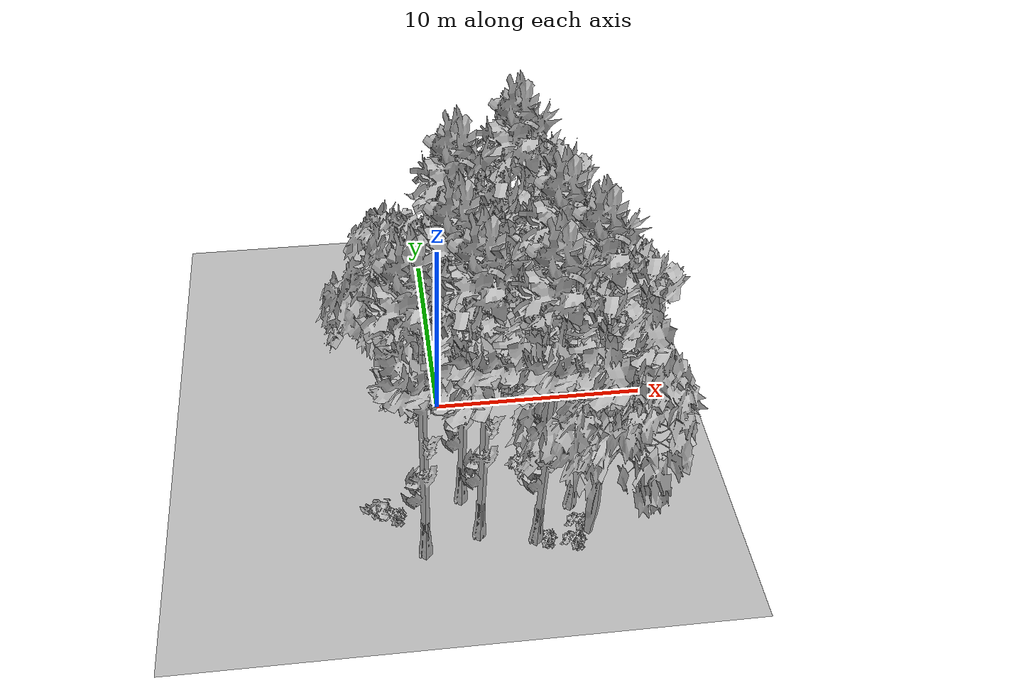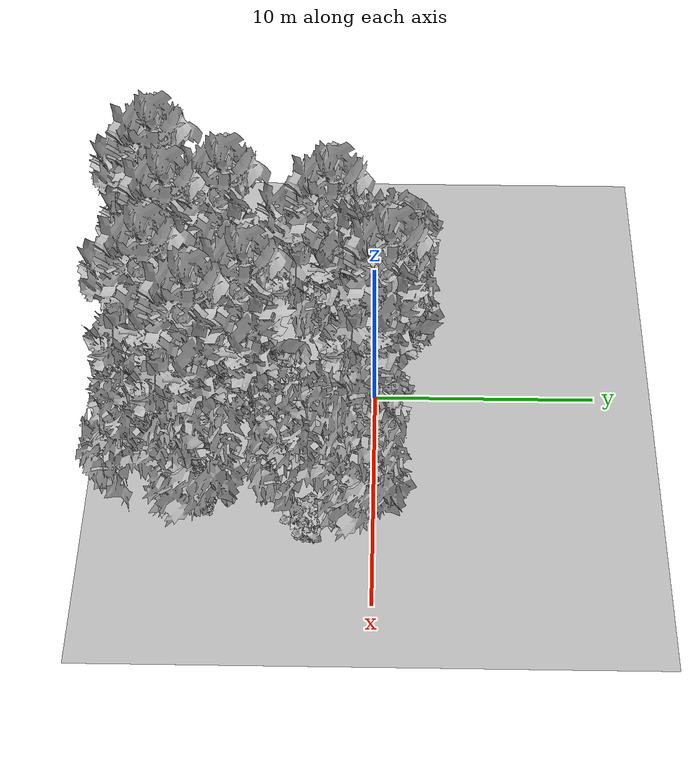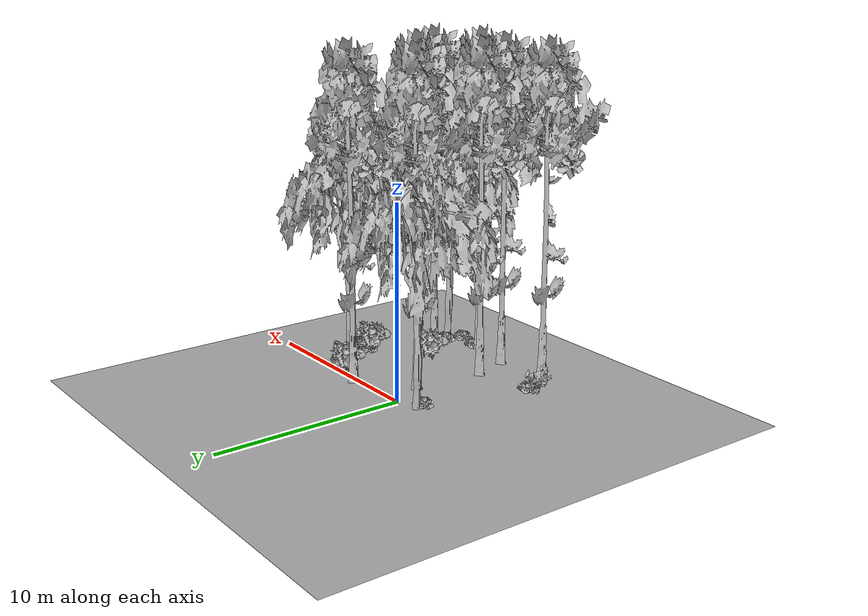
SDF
<sdf version="1.7">
 <world name="default">
  <model name="ground_plane">
   <static>1</static>
   <link name="link">
    <collision name="collision">
     <pose>-50 0 0 0 -0 0</pose>
     <geometry><plane><normal>0 0 1</normal><size>80 80</size></plane></geometry>
     <surface><contact><ode><min_depth>0.01</min_depth><max_vel>0</max_vel></ode></contact></surface>
    </collision>
    <visual name="grass">
     <cast_shadows>0</cast_shadows>
     <geometry>
      <mesh>
       <scale>0.46714285714285714 0.46714285714285714 0.1</scale>
       <uri>file://grass_plane/meshes/grass_plane.dae</uri>
      </mesh>
     </geometry>
    </visual>
   </link>
  </model>
  <model name="Tree 35">
   <static>1</static>
   <pose>-1.3678966111839301 -8.181691548548613 0 1.57079 -0 0</pose>
   <link name="link">
    <collision name="collision">
     <geometry><mesh><scale>3.5 5 3.5</scale><uri>model://tree_9/meshes/tree_9.obj</uri></mesh></geometry>
    </collision>
    <visual name="visual">
     <geometry><mesh><scale>3.5 5 3.5</scale><uri>model://tree_9/meshes/tree_9.obj</uri></mesh></geometry>
    </visual>
   </link>
  </model>
  <model name="Tree 115">
   <static>1</static>
   <pose>4.315910832474515 -4.585934001102331 0 1.57079 -0 0</pose>
   <link name="link">
    <collision name="collision">
     <geometry><mesh><scale>3.5 5 3.5</scale><uri>model://tree_9/meshes/tree_9.obj</uri></mesh></geometry>
    </collision>
    <visual name="visual">
     <geometry><mesh><scale>3.5 5 3.5</scale><uri>model://tree_9/meshes/tree_9.obj</uri></mesh></geometry>
    </visual>
   </link>
  </model>
  <model name="Tree 132">
   <static>1</static>
   <pose>3.4757917963479983 -7.980133960158604 0 1.57079 -0 0</pose>
   <link name="link">
    <collision name="collision">
     <geometry><mesh><scale>3.5 5 3.5</scale><uri>model://tree_9/meshes/tree_9.obj</uri></mesh></geometry>
    </collision>
    <visual name="visual">
     <geometry><mesh><scale>3.5 5 3.5</scale><uri>model://tree_9/meshes/tree_9.obj</uri></mesh></geometry>
    </visual>
   </link>
  </model>
  <model name="Tree 140">
   <static>1</static>
   <pose>0.8367239508114039 -1.8252050001709463 0 1.57079 -0 0</pose>
   <link name="link">
    <collision name="collision">
     <geometry><mesh><scale>3.5 5 3.5</scale><uri>model://tree_9/meshes/tree_9.obj</uri></mesh></geometry>
    </collision>
    <visual name="visual">
     <geometry><mesh><scale>3.5 5 3.5</scale><uri>model://tree_9/meshes/tree_9.obj</uri></mesh></geometry>
    </visual>
   </link>
  </model>
  <model name="Tree 181">
   <static>1</static>
   <pose>-1.244410094268261 -0.3391912022571475 0 1.57079 -0 0</pose>
   <link name="link">
    <collision name="collision">
     <geometry><mesh><scale>3.5 5 3.5</scale><uri>model://tree_2/meshes/tree_2.obj</uri></mesh></geometry>
    </collision>
    <visual name="visual">
     <geometry><mesh><scale>3.5 5 3.5</scale><uri>model://tree_2/meshes/tree_2.obj</uri></mesh></geometry>
    </visual>
   </link>
  </model>
  <model name="Tree 225">
   <static>1</static>
   <pose>3.4572962837556602 0.21502251531448024 0 1.57079 -0 0</pose>
   <link name="link">
    <collision name="collision">
     <geometry><mesh><scale>3.5 5 3.5</scale><uri>model://tree_9/meshes/tree_9.obj</uri></mesh></geometry>
    </collision>
    <visual name="visual">
     <geometry><mesh><scale>3.5 5 3.5</scale><uri>model://tree_9/meshes/tree_9.obj</uri></mesh></geometry>
    </visual>
   </link>
  </model>
  <model name="Tree 250">
   <static>1</static>
   <pose>5.779613469860486 -7.748131279739368 0 1.57079 -0 0</pose>
   <link name="link">
    <collision name="collision">
     <geometry><mesh><scale>3.5 5 3.5</scale><uri>model://tree_2/meshes/tree_2.obj</uri></mesh></geometry>
    </collision>
    <visual name="visual">
     <geometry><mesh><scale>3.5 5 3.5</scale><uri>model://tree_2/meshes/tree_2.obj</uri></mesh></geometry>
    </visual>
   </link>
  </model>
  <model name="Tree 259">
   <static>1</static>
   <pose>6.24265856639493 -1.4806982822251626 0 1.57079 -0 0</pose>
   <link name="link">
    <collision name="collision">
     <geometry><mesh><scale>3.5 5 3.5</scale><uri>model://tree_2/meshes/tree_2.obj</uri></mesh></geometry>
    </collision>
    <visual name="visual">
     <geometry><mesh><scale>3.5 5 3.5</scale><uri>model://tree_2/meshes/tree_2.obj</uri></mesh></geometry>
    </visual>
   </link>
  </model>
  <model name="Tree 362">
   <static>1</static>
   <pose>5.292433320828415 -6.337592960532852 0 1.57079 -0 0</pose>
   <link name="link">
    <collision name="collision">
     <geometry><mesh><scale>3.5 5 3.5</scale><uri>model://tree_9/meshes/tree_9.obj</uri></mesh></geometry>
    </collision>
    <visual name="visual">
     <geometry><mesh><scale>3.5 5 3.5</scale><uri>model://tree_9/meshes/tree_9.obj</uri></mesh></geometry>
    </visual>
   </link>
  </model>
  <model name="Tree 393">
   <static>1</static>
   <pose>1.0537522274067896 -7.49090640205938 0 1.57079 -0 0</pose>
   <link name="link">
    <collision name="collision">
     <geometry><mesh><scale>3.5 5 3.5</scale><uri>model://tree_9/meshes/tree_9.obj</uri></mesh></geometry>
    </collision>
    <visual name="visual">
     <geometry><mesh><scale>3.5 5 3.5</scale><uri>model://tree_9/meshes/tree_9.obj</uri></mesh></geometry>
    </visual>
   </link>
  </model>
  <model name="Tree 552">
   <static>1</static>
   <pose>0.47024507786626657 -5.560399965085352 0 1.57079 -0 0</pose>
   <link name="link">
    <collision name="collision">
     <geometry><mesh><scale>3.5 5 3.5</scale><uri>model://tree_9/meshes/tree_9.obj</uri></mesh></geometry>
    </collision>
    <visual name="visual">
     <geometry><mesh><scale>3.5 5 3.5</scale><uri>model://tree_9/meshes/tree_9.obj</uri></mesh></geometry>
    </visual>
   </link>
  </model>
  <model name="Bush 39">
   <static>1</static>
   <pose>4.559625369078809 -0.2919763975803562 0 1.57079 -0 0</pose>
   <link name="link">
    <collision name="collision">
     <geometry><mesh><scale>2 2 2</scale><uri>model://bush_1/meshes/bush_1.obj</uri></mesh></geometry>
     <surface><contact><collide_without_contact>false</collide_without_contact></contact></surface>
    </collision>
    <visual name="visual">
     <geometry><mesh><scale>2 2 2</scale><uri>model://bush_1/meshes/bush_1.obj</uri></mesh></geometry>
    </visual>
   </link>
  </model>
  <model name="Bush 99">
   <static>1</static>
   <pose>5.129755557851482 -8.24760490185784 0 1.57079 -0 0</pose>
   <link name="link">
    <collision name="collision">
     <geometry><mesh><scale>2 2 2</scale><uri>model://bush_2/meshes/bush_2.obj</uri></mesh></geometry>
     <surface><contact><collide_without_contact>false</collide_without_contact></contact></surface>
    </collision>
    <visual name="visual">
     <geometry><mesh><scale>2 2 2</scale><uri>model://bush_2/meshes/bush_2.obj</uri></mesh></geometry>
    </visual>
   </link>
  </model>
  <model name="Bush 143">
   <static>1</static>
   <pose>6.245947742542178 -3.085715846179866 0 1.57079 -0 0</pose>
   <link name="link">
    <collision name="collision">
     <geometry><mesh><scale>2 2 2</scale><uri>model://bush_1/meshes/bush_1.obj</uri></mesh></geometry>
     <surface><contact><collide_without_contact>false</collide_without_contact></contact></surface>
    </collision>
    <visual name="visual">
     <geometry><mesh><scale>2 2 2</scale><uri>model://bush_1/meshes/bush_1.obj</uri></mesh></geometry>
    </visual>
   </link>
  </model>
  <model name="Bush 178">
   <static>1</static>
   <pose>5.493868018770236 -7.3272166171930735 0 1.57079 -0 0</pose>
   <link name="link">
    <collision name="collision">
     <geometry><mesh><scale>2 2 2</scale><uri>model://bush_2/meshes/bush_2.obj</uri></mesh></geometry>
     <surface><contact><collide_without_contact>false</collide_without_contact></contact></surface>
    </collision>
    <visual name="visual">
     <geometry><mesh><scale>2 2 2</scale><uri>model://bush_2/meshes/bush_2.obj</uri></mesh></geometry>
    </visual>
   </link>
  </model>
  <model name="Bush 184">
   <static>1</static>
   <pose>7.094741724572479 -2.6365698682309358 0 1.57079 -0 0</pose>
   <link name="link">
    <collision name="collision">
     <geometry><mesh><scale>2 2 2</scale><uri>model://bush_0/meshes/bush_0.obj</uri></mesh></geometry>
     <surface><contact><collide_without_contact>false</collide_without_contact></contact></surface>
    </collision>
    <visual name="visual">
     <geometry><mesh><scale>2 2 2</scale><uri>model://bush_0/meshes/bush_0.obj</uri></mesh></geometry>
    </visual>
   </link>
  </model>
  <model name="Bush 192">
   <static>1</static>
   <pose>-1.067549773143618 -0.8026539259056449 0 1.57079 -0 0</pose>
   <link name="link">
    <collision name="collision">
     <geometry><mesh><scale>2 2 2</scale><uri>model://bush_2/meshes/bush_2.obj</uri></mesh></geometry>
     <surface><contact><collide_without_contact>false</collide_without_contact></contact></surface>
    </collision>
    <visual name="visual">
     <geometry><mesh><scale>2 2 2</scale><uri>model://bush_2/meshes/bush_2.obj</uri></mesh></geometry>
    </visual>
   </link>
  </model>
  <model name="Bush 221">
   <static>1</static>
   <pose>-2.5890714447051906 -6.223488990050953 0 1.57079 -0 0</pose>
   <link name="link">
    <collision name="collision">
     <geometry><mesh><scale>2 2 2</scale><uri>model://bush_2/meshes/bush_2.obj</uri></mesh></geometry>
     <surface><contact><collide_without_contact>false</collide_without_contact></contact></surface>
    </collision>
    <visual name="visual">
     <geometry><mesh><scale>2 2 2</scale><uri>model://bush_2/meshes/bush_2.obj</uri></mesh></geometry>
    </visual>
   </link>
  </model>
  <model name="Bush 256">
   <static>1</static>
   <pose>6.488857420276894 -3.166168490921528 0 1.57079 -0 0</pose>
   <link name="link">
    <collision name="collision">
     <geometry><mesh><scale>2 2 2</scale><uri>model://bush_0/meshes/bush_0.obj</uri></mesh></geometry>
     <surface><contact><collide_without_contact>false</collide_without_contact></contact></surface>
    </collision>
    <visual name="visual">
     <geometry><mesh><scale>2 2 2</scale><uri>model://bush_0/meshes/bush_0.obj</uri></mesh></geometry>
    </visual>
   </link>
  </model>
  <model name="Bush 408">
   <static>1</static>
   <pose>6.692702303558036 -2.9391614612301993 0 1.57079 -0 0</pose>
   <link name="link">
    <collision name="collision">
     <geometry><mesh><scale>2 2 2</scale><uri>model://bush_2/meshes/bush_2.obj</uri></mesh></geometry>
     <surface><contact><collide_without_contact>false</collide_without_contact></contact></surface>
    </collision>
    <visual name="visual">
     <geometry><mesh><scale>2 2 2</scale><uri>model://bush_2/meshes/bush_2.obj</uri></mesh></geometry>
    </visual>
   </link>
  </model>
  <model name="Bush 461">
   <static>1</static>
   <pose>-3.214487775107415 -6.247775971546787 0 1.57079 -0 0</pose>
   <link name="link">
    <collision name="collision">
     <geometry><mesh><scale>2 2 2</scale><uri>model://bush_0/meshes/bush_0.obj</uri></mesh></geometry>
     <surface><contact><collide_without_contact>false</collide_without_contact></contact></surface>
    </collision>
    <visual name="visual">
     <geometry><mesh><scale>2 2 2</scale><uri>model://bush_0/meshes/bush_0.obj</uri></mesh></geometry>
    </visual>
   </link>
  </model>
  <model name="Bush 489">
   <static>1</static>
   <pose>3.5662969550614676 -4.917191943562443 0 1.57079 -0 0</pose>
   <link name="link">
    <collision name="collision">
     <geometry><mesh><scale>2 2 2</scale><uri>model://bush_1/meshes/bush_1.obj</uri></mesh></geometry>
     <surface><contact><collide_without_contact>false</collide_without_contact></contact></surface>
    </collision>
    <visual name="visual">
     <geometry><mesh><scale>2 2 2</scale><uri>model://bush_1/meshes/bush_1.obj</uri></mesh></geometry>
    </visual>
   </link>
  </model>
  <model name="Bush 532">
   <static>1</static>
   <pose>3.8587636719883918 -8.020875636395068 0 1.57079 -0 0</pose>
   <link name="link">
    <collision name="collision">
     <geometry><mesh><scale>2 2 2</scale><uri>model://bush_2/meshes/bush_2.obj</uri></mesh></geometry>
     <surface><contact><collide_without_contact>false</collide_without_contact></contact></surface>
    </collision>
    <visual name="visual">
     <geometry><mesh><scale>2 2 2</scale><uri>model://bush_2/meshes/bush_2.obj</uri></mesh></geometry>
    </visual>
   </link>
  </model>
 </world>
</sdf>
